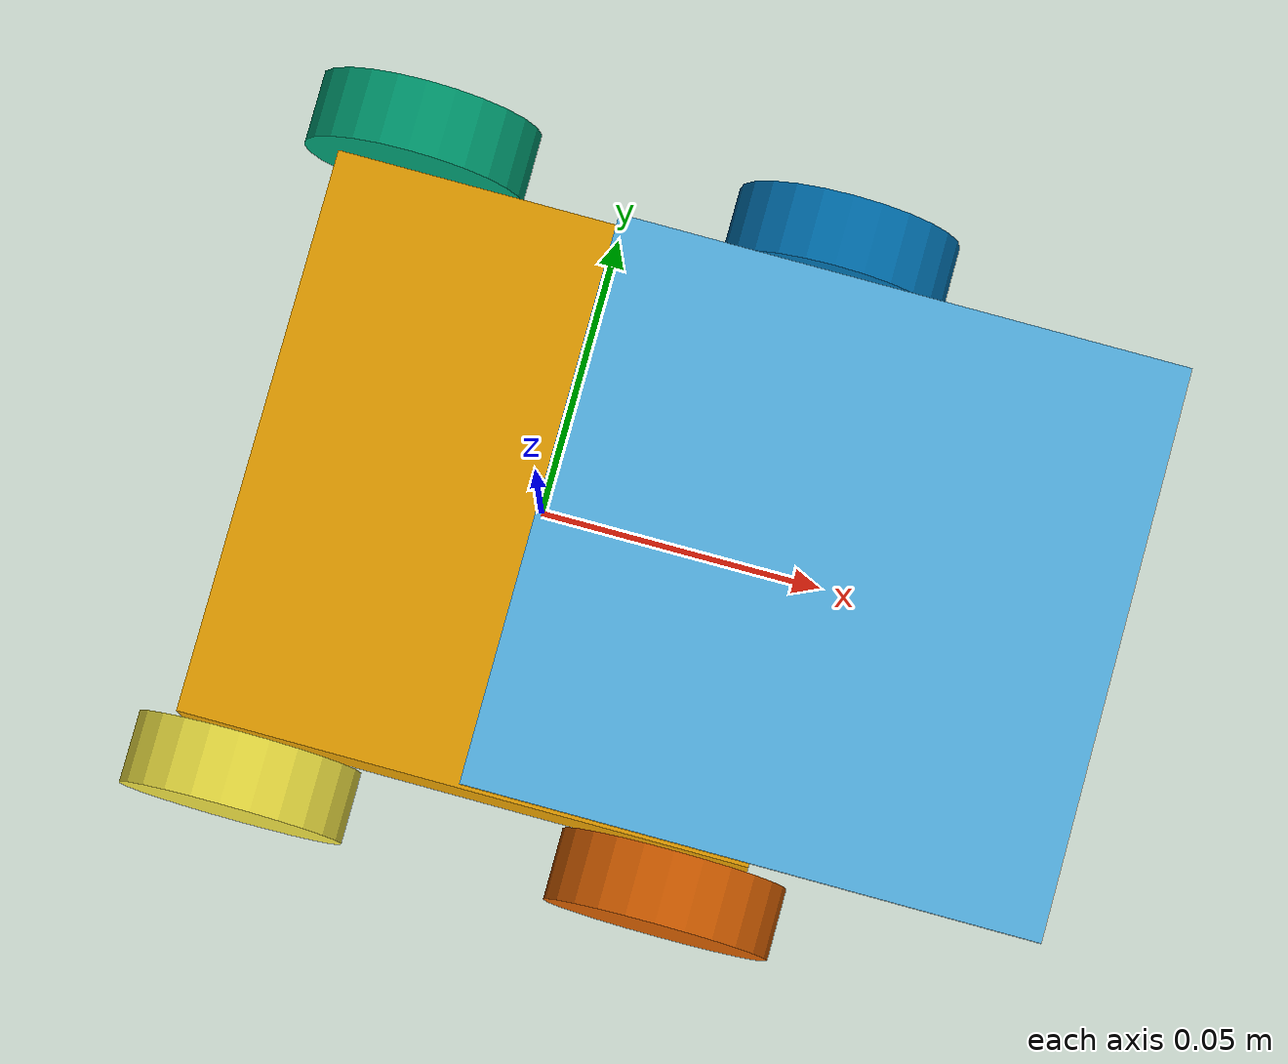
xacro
<?xml version='1.0'?>

<robot name="robot" xmlns:xacro="http://www.ros.org/wiki/xacro">

  <xacro:include filename="$(find myrobot_description)/urdf/myrobot.gazebo" />
  <xacro:include filename="$(find myrobot_description)/urdf/materials.xacro" />
  <xacro:include filename="$(find myrobot_description)/urdf/macros.xacro" />

  <gazebo>
    <plugin name="differential_drive_controller" filename="libgazebo_ros_diff_drive.so">
      <legacyMode>false</legacyMode>
      <alwaysOn>true</alwaysOn>
      <updateRate>20</updateRate>
      <leftJoint>left_back_wheel_hinge</leftJoint>
      <rightJoint>right_back_wheel_hinge</rightJoint>
      <wheelSeparation>0.1608</wheelSeparation>
      <wheelDiameter>0.1</wheelDiameter>
      <wheelTorque>5</wheelTorque>
      <commandTopic>robot1/cmd_vel</commandTopic>
      <odometryTopic>robot1/odom</odometryTopic>
      <odometryFrame>grid/odom</odometryFrame>
      <robotBaseFrame>chassis1</robotBaseFrame>
    </plugin>
  </gazebo>

    <link name="chassis1">
    <pose>0 0 0.1 0 0 0</pose>
    <inertial>
      <mass value="10"/>
      <origin rpy=" 0 0 0" xyz="0.0 0 0.1"/>
      <inertia ixx="0.5" ixy="0" ixz="0" iyy="1.0" iyz="0" izz="0.1"/>
    </inertial>
    <collision name="collision">
            <surface>
        <friction>
          <ode>
            <mu>1</mu>
            <mu2>1</mu2>
          </ode>
        </friction>
      </surface>
      <geometry>
        <box size="0.1016 .1016 .02"/>
      </geometry>
    </collision>
    <visual name="chassis1_visual">
      <origin rpy=" 0 0 0" xyz="0 0 0"/>
      <geometry>
        <box size="0.1016 .1016 .02"/>
      </geometry>
    </visual>
  </link>

    <link name="lid">
    <pose>0.0508 0.0508 0.10 0 0.11 0</pose>
    <origin rpy="0 1.5707 1.5707" xyz="0.1 0 0"/>
    <inertial>
      <mass value="1"/>
      <origin rpy=" 0 0 0" xyz="0 0 0"/>
      <inertia ixx="0.01" ixy="0" ixz="0" iyy="1.0" iyz="0" izz="0.01"/>
    </inertial>
    <collision name="collision">
            <surface>
        <friction>
          <ode>
            <mu>1</mu>
            <mu2>1</mu2>
          </ode>
        </friction>
      </surface>
      <geometry>
        <box size="0.1016 .1016 .001"/>
      </geometry>
    </collision>
    <visual name="chassis1_visual">
      <origin rpy=" 0 0 0" xyz="0 0 0"/>
      <geometry>
        <box size="0.1016 .1016 .001"/>
      </geometry>
    </visual>
  </link>

  <link name="left_back_wheel">
    <!--origin xyz="0.1 0.13 0.1" rpy="0 1.5707 1.5707"/-->
    <collision name="collision">
            <surface>
        <friction>
          <ode>
            <mu>1</mu>
            <mu2>1</mu2>
          </ode>
        </friction>
      </surface>
      <origin rpy="0 1.5707 1.5707" xyz="0 0 0"/>
      <geometry>
        <cylinder length="0.0127" radius="0.02"/>
      </geometry>
    </collision>
    <visual name="left_back_wheel_visual">
      <origin rpy="0 1.5707 1.5707" xyz="0 0 0"/>
      <geometry>
        <cylinder length="0.0127" radius="0.02"/>
      </geometry>
    </visual>
    <inertial>
      <origin rpy="0 1.5707 1.5707" xyz="0 0 0"/>
      <mass value="10"/>
      <cylinder_inertia h="0.0127" m="1" r="0.05"/>
      <inertia ixx="1.0" ixy="0.0" ixz="0.0" iyy="1.0" iyz="0.0" izz="1.0"/>
    </inertial>
  </link>
  <link name="right_back_wheel">
    <!--origin xyz="0.1 -0.13 0.1" rpy="0 1.5707 1.5707"/-->
    <collision name="collision">
            <surface>
        <friction>
          <ode>
            <mu>1</mu>
            <mu2>1</mu2>
          </ode>
        </friction>
      </surface>
      <origin rpy="0 1.5707 1.5707" xyz="0 0 0"/>
      <geometry>
        <cylinder length="0.0127" radius="0.02"/>
      </geometry>
    </collision>
    <visual name="right_back_wheel_visual">
      <origin rpy="0 1.5707 1.5707" xyz="0 0 0"/>
      <geometry>
        <cylinder length="0.0127" radius="0.02"/>
      </geometry>
    </visual>
    <inertial>
      <origin rpy="0 1.5707 1.5707" xyz="0 0 0"/>
      <mass value="10"/>
      <cylinder_inertia h="0.0127" m="1" r="0.05"/>
      <inertia ixx="1.0" ixy="0.0" ixz="0.0" iyy="1.0" iyz="0.0" izz="1.0"/>
    </inertial>
  </link>
    <link name="left_front_wheel">
    <!--origin xyz="0.1 -0.13 0.1" rpy="0 1.5707 1.5707"/-->
    <collision name="collision">
            <surface>
        <friction>
          <ode>
            <mu>1</mu>
            <mu2>1</mu2>
          </ode>
        </friction>
      </surface>
      <origin rpy="0 1.5707 1.5707" xyz="0 0 0"/>
      <geometry>
        <cylinder length="0.0127" radius="0.02"/>
      </geometry>
    </collision>
    <visual name="left_front_wheel_visual">
      <origin rpy="0 1.5707 1.5707" xyz="0 0 0"/>
      <geometry>
        <cylinder length="0.0127" radius="0.02"/>
      </geometry>
    </visual>
    <inertial>
      <origin rpy="0 1.5707 1.5707" xyz="0 0 0"/>
      <mass value="10"/>
      <cylinder_inertia h="0.127" m="1" r="0.05"/>
      <inertia ixx="1.0" ixy="0.0" ixz="0.0" iyy="1.0" iyz="0.0" izz="1.0"/>
    </inertial>
  </link>
    <link name="right_front_wheel">
    <!--origin xyz="0.1 -0.13 0.1" rpy="0 1.5707 1.5707"/-->
    <collision name="collision">
            <surface>
        <friction>
          <ode>
            <mu>1</mu>
            <mu2>1</mu2>
          </ode>
        </friction>
      </surface>
      <origin rpy="0 1.5707 1.5707" xyz="0 0 0"/>
      <geometry>
        <cylinder length="0.0127" radius="0.02"/>
      </geometry>
    </collision>
    <visual name="right_front_wheel_visual">
      <origin rpy="0 1.5707 1.5707" xyz="0 0 0"/>
      <geometry>
        <cylinder length="0.0127" radius="0.02"/>
      </geometry>
    </visual>
    <inertial>
      <origin rpy="0 1.5707 1.5707" xyz="0 0 0"/>
      <mass value="10"/>
      <cylinder_inertia h="0.0127" m="1" r="0.05"/>
      <inertia ixx="1.0" ixy="0.0" ixz="0.0" iyy="1.0" iyz="0.0" izz="1.0"/>
    </inertial>
  </link>
  <joint name="left_back_wheel_hinge" type="continuous">
    <origin rpy="0 0 0" xyz="-0.0381 0.0584 0"/>
    <child link="left_back_wheel"/>
    <parent link="chassis1"/>
    <axis rpy="0 0 0" xyz="0 1 0"/>
    <limit effort="100" velocity="100"/>
    <joint_properties damping="0.7" friction="10"/>
  </joint>
  <joint name="right_back_wheel_hinge" type="continuous">
    <origin rpy="0 0 0" xyz="-0.0381 -0.0584 0"/>
    <child link="right_back_wheel"/>
    <parent link="chassis1"/>
    <axis rpy="0 0 0" xyz="0 1 0"/>
    <limit effort="100" velocity="100"/>
    <joint_properties damping="0.7" friction="10"/>
  </joint>
    <joint name="left_front_wheel_hinge" type="continuous">
    <origin rpy="0 0 0" xyz="0.0381 0.0584 0"/>
    <child link="left_front_wheel"/>
    <parent link="chassis1"/>
    <axis rpy="0 0 0" xyz="0 1 0"/>
    <limit effort="100" velocity="100"/>
    <joint_properties damping="0.7" friction="10"/>
  </joint>
  <joint name="right_front_wheel_hinge" type="continuous">
    <origin rpy="0 0 0" xyz="0.0381 -0.0584 0"/>
    <child link="right_front_wheel"/>
    <parent link="chassis1"/>
    <axis rpy="0 0 0" xyz="0 1 0"/>
    <limit effort="100" velocity="100"/>
    <joint_properties damping="0.7" friction="10"/>
  </joint>

<joint name="dropper_joint" type="continuous">
    <origin rpy="0 0 0" xyz="0.0508 0 0.02"/>
    <child link="lid"/>
    <parent link="chassis1"/>
    <axis rpy="0 0 0" xyz="0 1 0"/>
    <limit effort="100" velocity="100"/>
    <joint_properties damping="0.7" friction="10"/>
  </joint>

  <gazebo reference="chassis1">
        <material>
          robot1/Image
        </material>
  </gazebo>

</robot>
